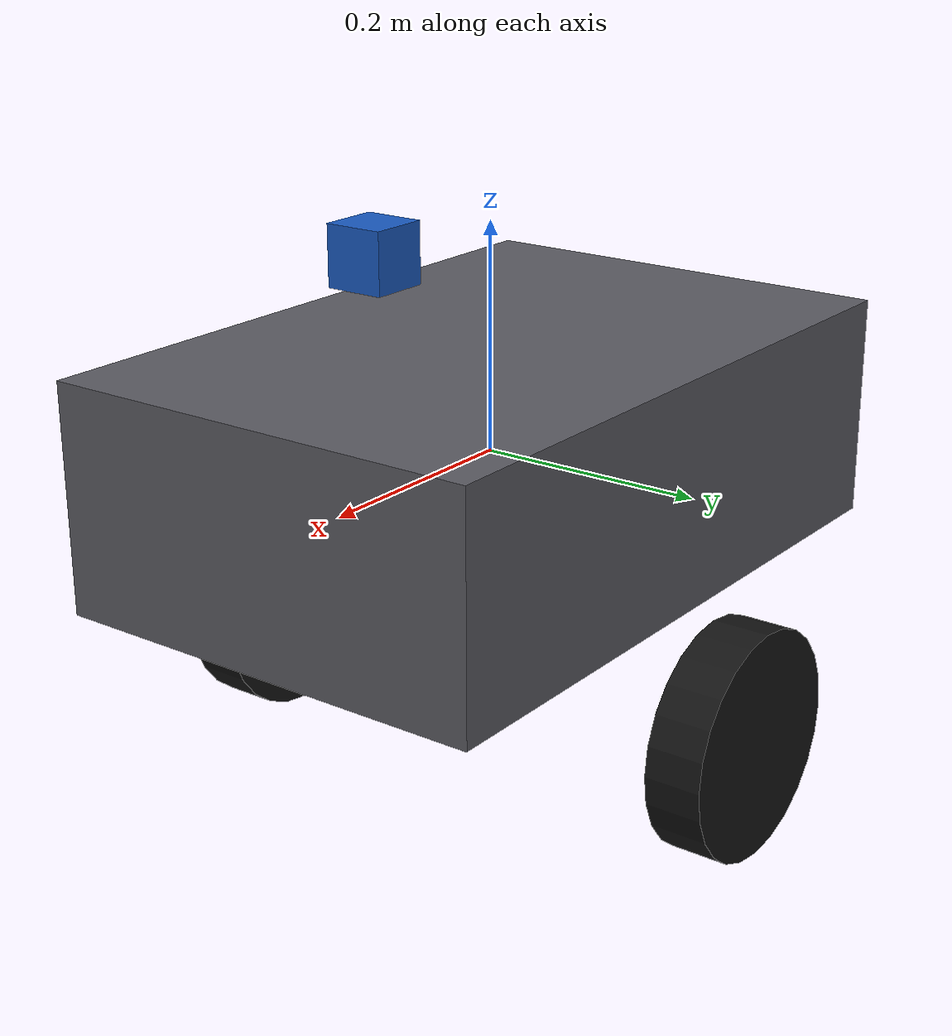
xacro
<?xml version="1.0"?>
<robot xmlns:xacro="http://www.ros.org/wiki/xacro" name="rover">

  <xacro:property name="base_length" value="0.6"/>
  <xacro:property name="base_width" value="0.4"/>
  <xacro:property name="base_height" value="0.2"/>
  <xacro:property name="base_mass" value="15.0"/>
  <xacro:property name="wheel_radius" value="0.1"/>
  <xacro:property name="wheel_length" value="0.05"/>
  <xacro:property name="wheel_y_offset" value="0.25"/>
  <xacro:property name="wheel_z_offset" value="-0.2"/>
  <xacro:property name="caster_radius" value="0.05"/>

  <link name="base_link">
    <visual>
      <geometry>
        <box size="${base_length} ${base_width} ${base_height}"/>
      </geometry>
      <material name="gray">
        <color rgba="0.35 0.35 0.38 1.0"/>
      </material>
    </visual>
    <collision>
      <geometry>
        <box size="${base_length} ${base_width} ${base_height}"/>
      </geometry>
    </collision>
    <inertial>
      <mass value="${base_mass}"/>
      <inertia ixx="0.35" ixy="0" ixz="0" iyy="0.55" iyz="0" izz="0.75"/>
    </inertial>
  </link>

  <link name="left_wheel">
    <visual>
      <origin rpy="1.5708 0 0" xyz="0 0 0"/>
      <geometry>
        <cylinder radius="${wheel_radius}" length="${wheel_length}"/>
      </geometry>
      <material name="black">
        <color rgba="0.08 0.08 0.08 1.0"/>
      </material>
    </visual>
    <collision>
      <origin rpy="1.5708 0 0" xyz="0 0 0"/>
      <geometry>
        <cylinder radius="${wheel_radius}" length="${wheel_length}"/>
      </geometry>
    </collision>
    <inertial>
      <mass value="1.0"/>
      <inertia ixx="0.005" ixy="0" ixz="0" iyy="0.008" iyz="0" izz="0.005"/>
    </inertial>
  </link>

  <link name="right_wheel">
    <visual>
      <origin rpy="1.5708 0 0" xyz="0 0 0"/>
      <geometry>
        <cylinder radius="${wheel_radius}" length="${wheel_length}"/>
      </geometry>
      <material name="black">
        <color rgba="0.08 0.08 0.08 1.0"/>
      </material>
    </visual>
    <collision>
      <origin rpy="1.5708 0 0" xyz="0 0 0"/>
      <geometry>
        <cylinder radius="${wheel_radius}" length="${wheel_length}"/>
      </geometry>
    </collision>
    <inertial>
      <mass value="1.0"/>
      <inertia ixx="0.005" ixy="0" ixz="0" iyy="0.008" iyz="0" izz="0.005"/>
    </inertial>
  </link>

  <link name="caster_wheel">
    <visual>
      <geometry>
        <sphere radius="${caster_radius}"/>
      </geometry>
      <material name="dark_gray">
        <color rgba="0.2 0.2 0.2 1.0"/>
      </material>
    </visual>
    <collision>
      <geometry>
        <sphere radius="${caster_radius}"/>
      </geometry>
    </collision>
    <inertial>
      <mass value="0.2"/>
      <inertia ixx="0.0001" ixy="0" ixz="0" iyy="0.0001" iyz="0" izz="0.0001"/>
    </inertial>
  </link>

  <link name="camera_link">
    <visual>
      <geometry>
        <box size="0.05 0.05 0.05"/>
      </geometry>
      <material name="blue">
        <color rgba="0.1 0.35 0.75 1.0"/>
      </material>
    </visual>
    <collision>
      <geometry>
        <box size="0.05 0.05 0.05"/>
      </geometry>
    </collision>
    <inertial>
      <mass value="0.05"/>
      <inertia ixx="0.00001" ixy="0" ixz="0" iyy="0.00001" iyz="0" izz="0.00001"/>
    </inertial>
  </link>

  <link name="imu_link">
    <inertial>
      <mass value="0.01"/>
      <inertia ixx="1e-6" ixy="0" ixz="0" iyy="1e-6" iyz="0" izz="1e-6"/>
    </inertial>
  </link>

  <joint name="left_wheel_joint" type="continuous">
    <parent link="base_link"/>
    <child link="left_wheel"/>
    <origin xyz="0 ${wheel_y_offset} ${wheel_z_offset}" rpy="0 0 0"/>
    <axis xyz="0 1 0"/>
  </joint>

  <joint name="right_wheel_joint" type="continuous">
    <parent link="base_link"/>
    <child link="right_wheel"/>
    <origin xyz="0 ${-wheel_y_offset} ${wheel_z_offset}" rpy="0 0 0"/>
    <axis xyz="0 1 0"/>
  </joint>

  <joint name="caster_joint" type="fixed">
    <parent link="base_link"/>
    <child link="caster_wheel"/>
    <origin xyz="0.25 0 -0.05" rpy="0 0 0"/>
  </joint>

  <joint name="camera_joint" type="fixed">
    <parent link="base_link"/>
    <child link="camera_link"/>
    <origin xyz="0.15 0 0.2" rpy="0 0 0"/>
  </joint>

  <joint name="imu_joint" type="fixed">
    <parent link="base_link"/>
    <child link="imu_link"/>
    <origin xyz="0 0 0" rpy="0 0 0"/>
  </joint>

  <gazebo>
    <plugin filename="gz-sim-diff-drive-system" name="gz::sim::systems::DiffDrive">
      <left_joint>left_wheel_joint</left_joint>
      <right_joint>right_wheel_joint</right_joint>
      <wheel_separation>0.5</wheel_separation>
      <wheel_radius>0.1</wheel_radius>
      <max_wheel_torque>20</max_wheel_torque>
      <max_wheel_acceleration>1.0</max_wheel_acceleration>
      <publish_odom>true</publish_odom>
      <publish_odom_tf>false</publish_odom_tf>
      <publish_wheel_tf>false</publish_wheel_tf>
      <odom_topic>/odom</odom_topic>
      <topic>/cmd_vel</topic>
      <frame_id>odom</frame_id>
      <child_frame_id>base_link</child_frame_id>
    </plugin>
    <plugin filename="gz-sim-imu-system" name="gz::sim::systems::Imu"/>
  </gazebo>

  <gazebo reference="imu_link">
    <sensor name="imu_sensor" type="imu">
      <always_on>true</always_on>
      <update_rate>100</update_rate>
      <topic>/imu/data</topic>
      <imu>
        <angular_velocity>
          <x>
            <noise type="gaussian">
              <mean>0.0</mean>
              <stddev>0.0002</stddev>
            </noise>
          </x>
          <y>
            <noise type="gaussian">
              <mean>0.0</mean>
              <stddev>0.0002</stddev>
            </noise>
          </y>
          <z>
            <noise type="gaussian">
              <mean>0.0</mean>
              <stddev>0.0002</stddev>
            </noise>
          </z>
        </angular_velocity>
        <linear_acceleration>
          <x>
            <noise type="gaussian">
              <mean>0.0</mean>
              <stddev>0.01</stddev>
            </noise>
          </x>
          <y>
            <noise type="gaussian">
              <mean>0.0</mean>
              <stddev>0.01</stddev>
            </noise>
          </y>
          <z>
            <noise type="gaussian">
              <mean>0.0</mean>
              <stddev>0.01</stddev>
            </noise>
          </z>
        </linear_acceleration>
      </imu>
    </sensor>
  </gazebo>

  <gazebo reference="camera_link">
    <sensor name="camera" type="camera">
      <always_on>true</always_on>
      <update_rate>30</update_rate>
      <visualize>true</visualize>
      <topic>/camera/color/image_raw</topic>
      <camera>
        <horizontal_fov>1.047</horizontal_fov>
        <image>
          <width>1280</width>
          <height>720</height>
          <format>R8G8B8</format>
        </image>
        <clip>
          <near>0.1</near>
          <far>100</far>
        </clip>
      </camera>
      <camera_info_topic>/camera/color/camera_info</camera_info_topic>
    </sensor>
  </gazebo>

</robot>
